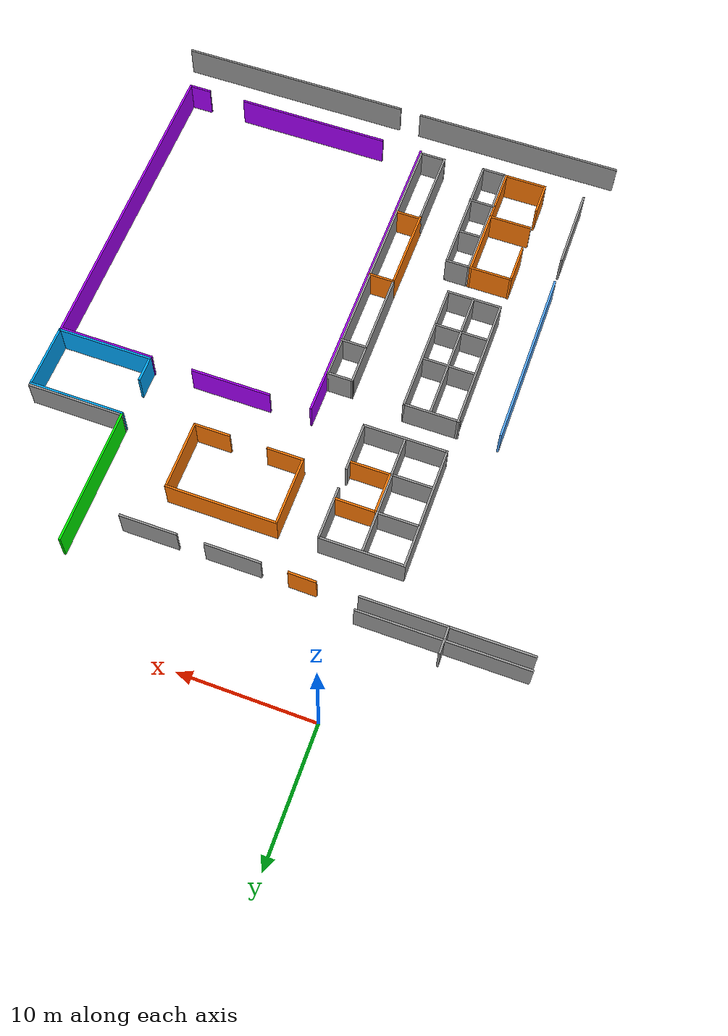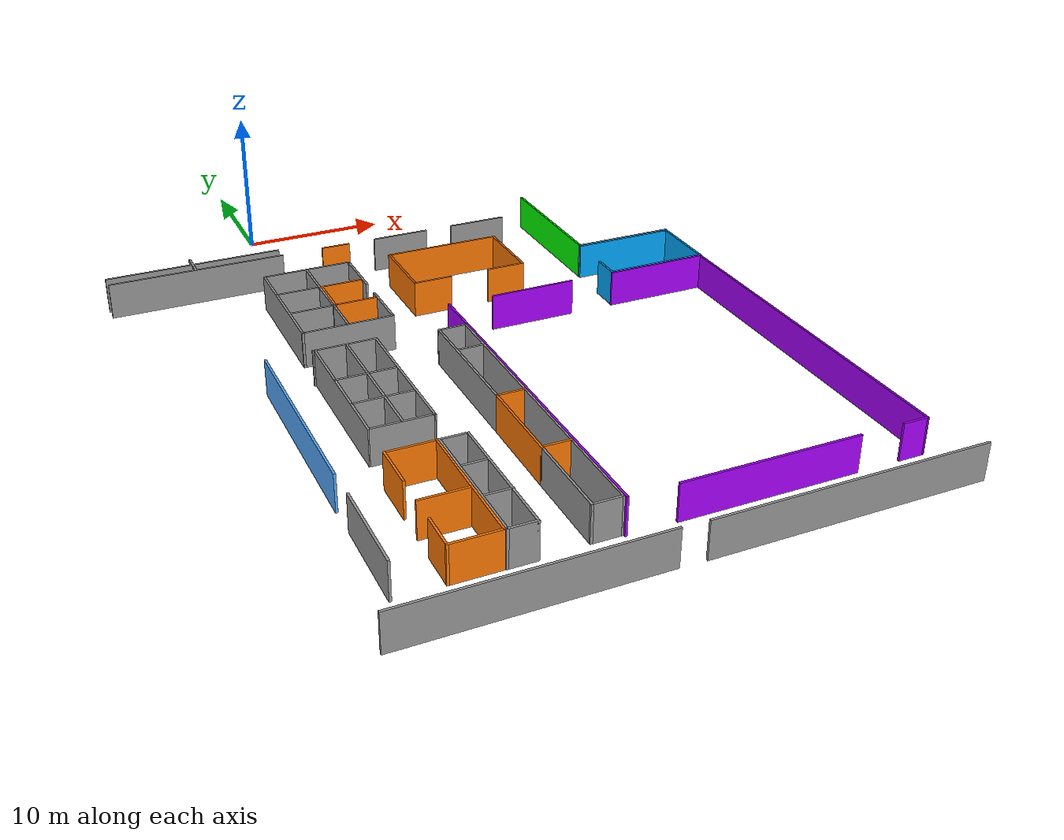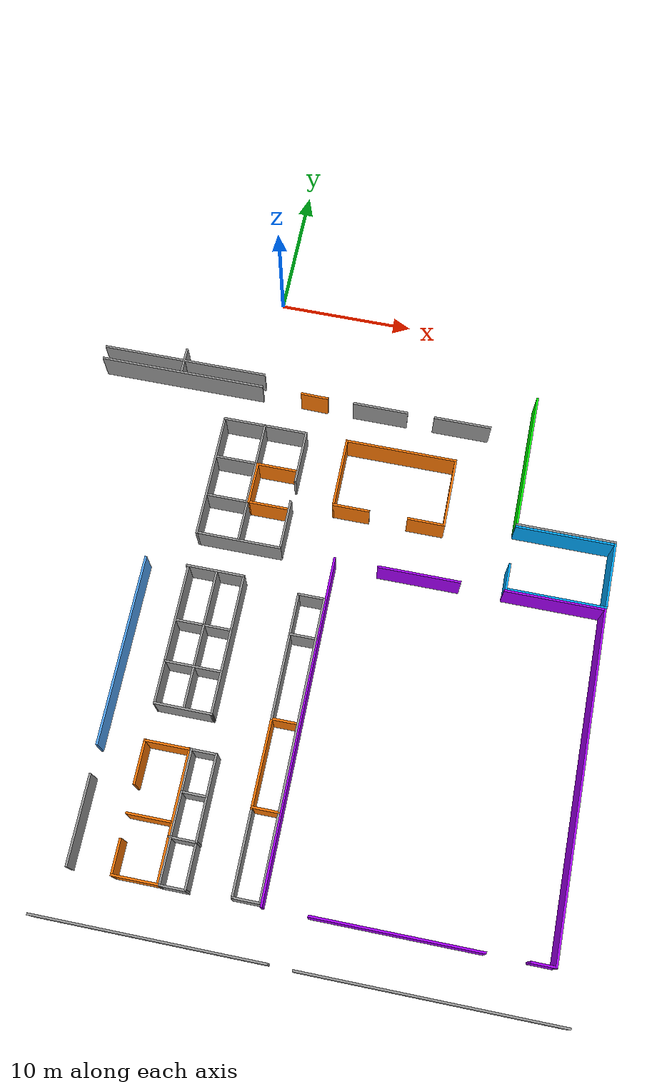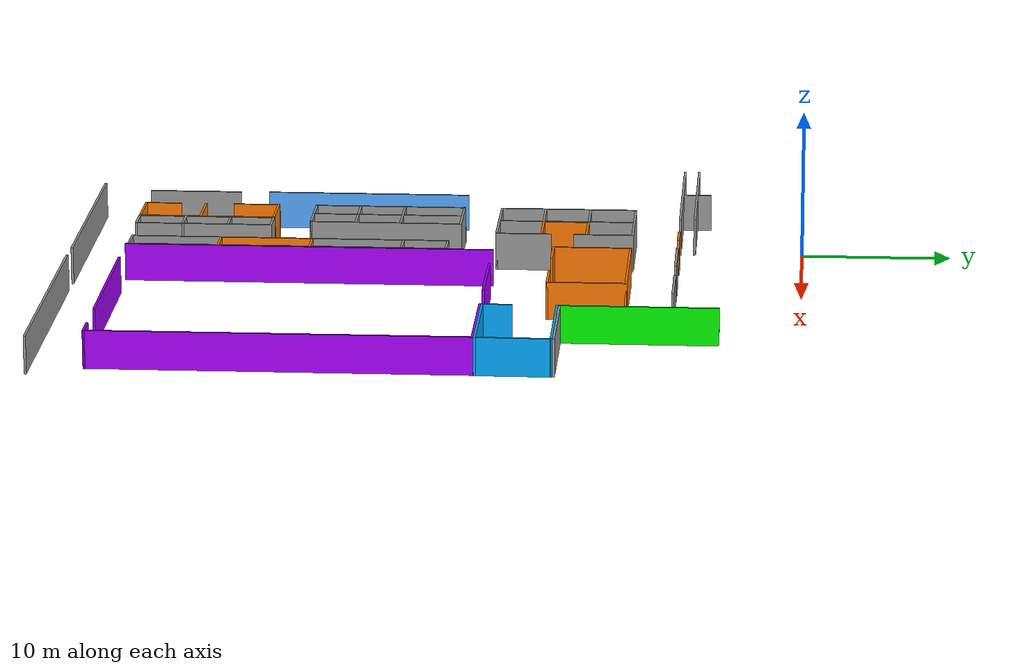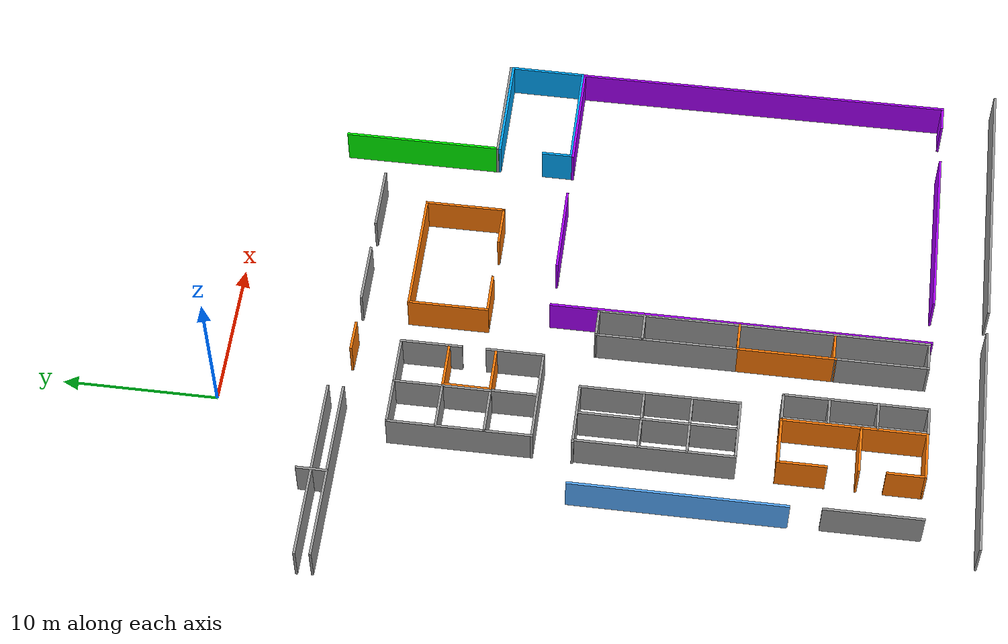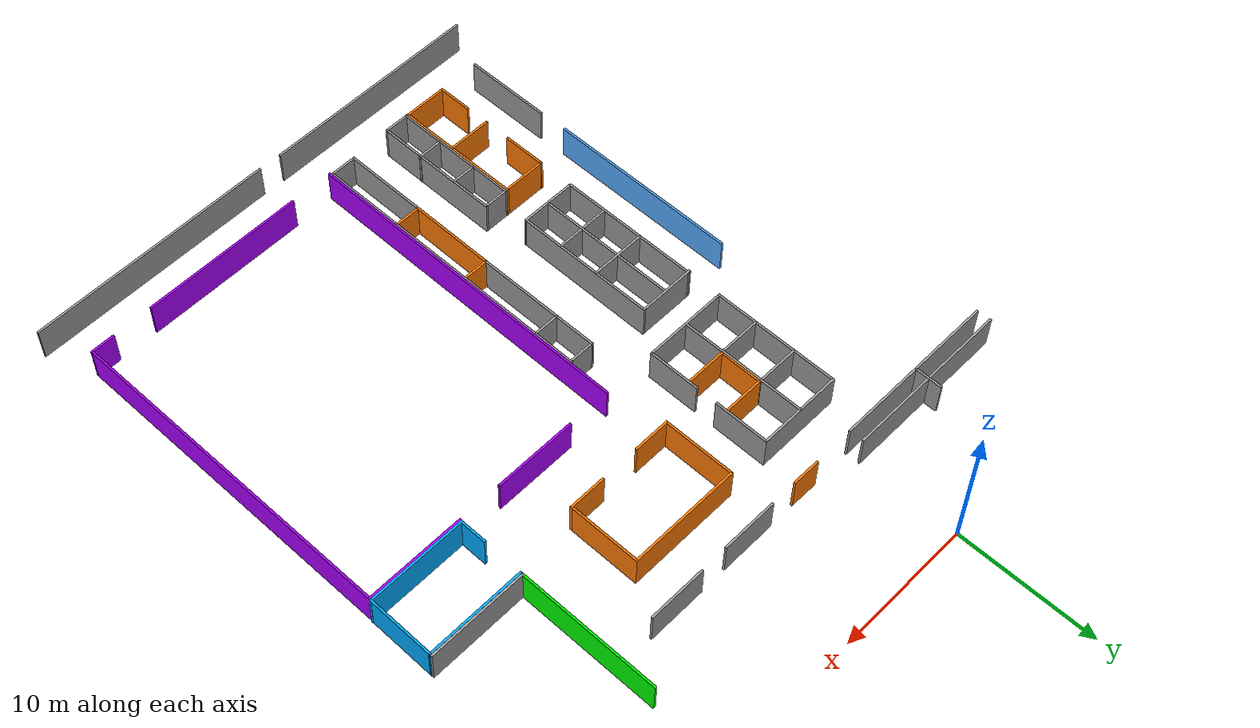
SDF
<sdf version="1.6">
 <model name="rebuilt_1">
  <pose>-2.12726 -2.76078 0 0 -0 0</pose>
  <link name="Wall_149">
   <collision name="Wall_149_Collision">
    <geometry><box><size>4.25 0.15 2.5</size></box></geometry>
    <pose>0 0 1.25 0 -0 0</pose>
   </collision>
   <visual name="Wall_149_Visual">
    <pose>0 0 1.25 0 -0 0</pose>
    <geometry><box><size>4.25 0.15 2.5</size></box></geometry>
    <material>
     <script><uri>file://media/materials/scripts/gazebo.material</uri><name>Gazebo/Grey</name></script>
     <ambient>1 1 1 1</ambient>
    </material>
    <meta><layer>0</layer></meta>
   </visual>
   <pose>17.4545 -5.4639 0 0 -0 3.14159</pose>
  </link>
  <link name="Wall_168">
   <collision name="Wall_168_Collision">
    <geometry><box><size>8.25 0.15 2.5</size></box></geometry>
    <pose>0 0 1.25 0 -0 0</pose>
   </collision>
   <visual name="Wall_168_Visual">
    <pose>0 0 1.25 0 -0 0</pose>
    <geometry><box><size>8.25 0.15 2.5</size></box></geometry>
    <material>
     <script><uri>file://media/materials/scripts/gazebo.material</uri><name>Gazebo/Grey</name></script>
     <ambient>0.996078 0.47451 0.0196078 1</ambient>
    </material>
    <meta><layer>0</layer></meta>
   </visual>
   <pose>13.4258 -8.56236 0 0 -0 0</pose>
  </link>
  <link name="Wall_169">
   <collision name="Wall_169_Collision">
    <geometry><box><size>5.25 0.15 2.5</size></box></geometry>
    <pose>0 0 1.25 0 -0 0</pose>
   </collision>
   <visual name="Wall_169_Visual">
    <pose>0 0 1.25 0 -0 0</pose>
    <geometry><box><size>5.25 0.15 2.5</size></box></geometry>
    <material>
     <script><uri>file://media/materials/scripts/gazebo.material</uri><name>Gazebo/Grey</name></script>
     <ambient>0.996078 0.47451 0.0196078 1</ambient>
    </material>
    <meta><layer>0</layer></meta>
   </visual>
   <pose>17.4758 -11.1124 0 0 0 -1.5708</pose>
  </link>
  <link name="Wall_171">
   <collision name="Wall_171_Collision">
    <geometry><box><size>5.25 0.15 2.5</size></box></geometry>
    <pose>0 0 1.25 0 -0 0</pose>
   </collision>
   <visual name="Wall_171_Visual">
    <pose>0 0 1.25 0 -0 0</pose>
    <geometry><box><size>5.25 0.15 2.5</size></box></geometry>
    <material>
     <script><uri>file://media/materials/scripts/gazebo.material</uri><name>Gazebo/Grey</name></script>
     <ambient>0.996078 0.47451 0.0196078 1</ambient>
    </material>
    <meta><layer>0</layer></meta>
   </visual>
   <pose>9.37576 -11.1124 0 0 -0 1.5708</pose>
  </link>
  <link name="Wall_173">
   <collision name="Wall_173_Collision">
    <geometry><box><size>2.75 0.15 2.5</size></box></geometry>
    <pose>0 0 1.25 0 -0 0</pose>
   </collision>
   <visual name="Wall_173_Visual">
    <pose>0 0 1.25 0 -0 0</pose>
    <geometry><box><size>2.75 0.15 2.5</size></box></geometry>
    <material>
     <script><uri>file://media/materials/scripts/gazebo.material</uri><name>Gazebo/Grey</name></script>
     <ambient>0.996078 0.47451 0.0196078 1</ambient>
    </material>
    <meta><layer>0</layer></meta>
   </visual>
   <pose>10.6758 -13.6624 0 0 -0 0</pose>
  </link>
  <link name="Wall_175">
   <collision name="Wall_175_Collision">
    <geometry><box><size>2.75 0.15 2.5</size></box></geometry>
    <pose>0 0 1.25 0 -0 0</pose>
   </collision>
   <visual name="Wall_175_Visual">
    <pose>0 0 1.25 0 -0 0</pose>
    <geometry><box><size>2.75 0.15 2.5</size></box></geometry>
    <material>
     <script><uri>file://media/materials/scripts/gazebo.material</uri><name>Gazebo/Grey</name></script>
     <ambient>0.996078 0.47451 0.0196078 1</ambient>
    </material>
    <meta><layer>0</layer></meta>
   </visual>
   <pose>16.1758 -13.6624 0 0 -0 3.14159</pose>
  </link>
  <link name="Wall_177">
   <collision name="Wall_177_Collision">
    <geometry><box><size>6 0.15 2.5</size></box></geometry>
    <pose>0 0 1.25 0 -0 0</pose>
   </collision>
   <visual name="Wall_177_Visual">
    <pose>0 0 1.25 0 -0 0</pose>
    <geometry><box><size>6 0.15 2.5</size></box></geometry>
    <material>
     <script><uri>file://media/materials/scripts/gazebo.material</uri><name>Gazebo/Grey</name></script>
     <ambient>0.666667 0 1 1</ambient>
    </material>
    <meta><layer>0</layer></meta>
   </visual>
   <pose>16.3827 -17.6674 0 0 -0 0</pose>
  </link>
  <link name="Wall_181">
   <collision name="Wall_181_Collision">
    <geometry><box><size>7.25 0.15 2.5</size></box></geometry>
    <pose>0 0 1.25 0 -0 0</pose>
   </collision>
   <visual name="Wall_181_Visual">
    <pose>0 0 1.25 0 -0 0</pose>
    <geometry><box><size>7.25 0.15 2.5</size></box></geometry>
    <material>
     <script><uri>file://media/materials/scripts/gazebo.material</uri><name>Gazebo/Grey</name></script>
     <ambient>0.666667 0 1 1</ambient>
    </material>
    <meta><layer>0</layer></meta>
   </visual>
   <pose>26.0779 -17.6626 0 0 -0 0</pose>
  </link>
  <link name="Wall_183">
   <collision name="Wall_183_Collision">
    <geometry><box><size>24.5047 0.15 2.5</size></box></geometry>
    <pose>0 0 1.25 0 -0 0</pose>
   </collision>
   <visual name="Wall_183_Visual">
    <pose>0 0 1.25 0 -0 0</pose>
    <geometry><box><size>24.5047 0.15 2.5</size></box></geometry>
    <material>
     <script><uri>file://media/materials/scripts/gazebo.material</uri><name>Gazebo/Grey</name></script>
     <ambient>0.666667 0 1 1</ambient>
    </material>
    <meta><layer>0</layer></meta>
   </visual>
   <pose>29.6489 -29.8583 0 0 0 -1.56908</pose>
  </link>
  <link name="Wall_185">
   <collision name="Wall_185_Collision">
    <geometry><box><size>24.5 0.15 2.5</size></box></geometry>
    <pose>0 0 1.25 0 -0 0</pose>
   </collision>
   <visual name="Wall_185_Visual">
    <pose>0 0 1.25 0 -0 0</pose>
    <geometry><box><size>24.5 0.15 2.5</size></box></geometry>
    <material>
     <script><uri>file://media/materials/scripts/gazebo.material</uri><name>Gazebo/Grey</name></script>
     <ambient>0.666667 0 1 1</ambient>
    </material>
    <meta><layer>0</layer></meta>
   </visual>
   <pose>10.2779 -29.838 0 0 -0 1.5708</pose>
  </link>
  <link name="Wall_195">
   <collision name="Wall_195_Collision">
    <geometry><box><size>2 0.15 2.5</size></box></geometry>
    <pose>0 0 1.25 0 -0 0</pose>
   </collision>
   <visual name="Wall_195_Visual">
    <pose>0 0 1.25 0 -0 0</pose>
    <geometry><box><size>2 0.15 2.5</size></box></geometry>
    <material>
     <script><uri>file://media/materials/scripts/gazebo.material</uri><name>Gazebo/Grey</name></script>
     <ambient>1 1 1 1</ambient>
    </material>
    <meta><layer>0</layer></meta>
   </visual>
   <pose>9.22824 -41.8686 0 0 -0 0</pose>
  </link>
  <link name="Wall_196">
   <collision name="Wall_196_Collision">
    <geometry><box><size>21.25 0.15 2.5</size></box></geometry>
    <pose>0 0 1.25 0 -0 0</pose>
   </collision>
   <visual name="Wall_196_Visual">
    <pose>0 0 1.25 0 -0 0</pose>
    <geometry><box><size>21.25 0.15 2.5</size></box></geometry>
    <material>
     <script><uri>file://media/materials/scripts/gazebo.material</uri><name>Gazebo/Grey</name></script>
     <ambient>1 1 1 1</ambient>
    </material>
    <meta><layer>0</layer></meta>
   </visual>
   <pose>10.1532 -31.3186 0 0 -0 1.5708</pose>
  </link>
  <link name="Wall_198">
   <collision name="Wall_198_Collision">
    <geometry><box><size>2 0.15 2.5</size></box></geometry>
    <pose>0 0 1.25 0 -0 0</pose>
   </collision>
   <visual name="Wall_198_Visual">
    <pose>0 0 1.25 0 -0 0</pose>
    <geometry><box><size>2 0.15 2.5</size></box></geometry>
    <material>
     <script><uri>file://media/materials/scripts/gazebo.material</uri><name>Gazebo/Grey</name></script>
     <ambient>1 1 1 1</ambient>
    </material>
    <meta><layer>0</layer></meta>
   </visual>
   <pose>9.22824 -20.7686 0 0 -0 0</pose>
  </link>
  <link name="Wall_200">
   <collision name="Wall_200_Collision">
    <geometry><box><size>2 0.15 2.5</size></box></geometry>
    <pose>0 0 1.25 0 -0 0</pose>
   </collision>
   <visual name="Wall_200_Visual">
    <pose>0 0 1.25 0 -0 0</pose>
    <geometry><box><size>2 0.15 2.5</size></box></geometry>
    <material>
     <script><uri>file://media/materials/scripts/gazebo.material</uri><name>Gazebo/Grey</name></script>
     <ambient>1 1 1 1</ambient>
    </material>
    <meta><layer>0</layer></meta>
   </visual>
   <pose>9.25811 -23.7223 0 0 -0 0</pose>
  </link>
  <link name="Wall_202">
   <collision name="Wall_202_Collision">
    <geometry><box><size>2 0.15 2.5</size></box></geometry>
    <pose>0 0 1.25 0 -0 0</pose>
   </collision>
   <visual name="Wall_202_Visual">
    <pose>0 0 1.25 0 -0 0</pose>
    <geometry><box><size>2 0.15 2.5</size></box></geometry>
    <material>
     <script><uri>file://media/materials/scripts/gazebo.material</uri><name>Gazebo/Grey</name></script>
     <ambient>0.996078 0.47451 0.0196078 1</ambient>
    </material>
    <meta><layer>0</layer></meta>
   </visual>
   <pose>9.25038 -29.8125 0 0 -0 0</pose>
  </link>
  <link name="Wall_204">
   <collision name="Wall_204_Collision">
    <geometry><box><size>2 0.15 2.5</size></box></geometry>
    <pose>0 0 1.25 0 -0 0</pose>
   </collision>
   <visual name="Wall_204_Visual">
    <pose>0 0 1.25 0 -0 0</pose>
    <geometry><box><size>2 0.15 2.5</size></box></geometry>
    <material>
     <script><uri>file://media/materials/scripts/gazebo.material</uri><name>Gazebo/Grey</name></script>
     <ambient>0.996078 0.47451 0.0196078 1</ambient>
    </material>
    <meta><layer>0</layer></meta>
   </visual>
   <pose>9.25038 -35.9099 0 0 -0 0</pose>
  </link>
  <link name="Wall_206">
   <collision name="Wall_206_Collision">
    <geometry><box><size>11.75 0.15 2.5</size></box></geometry>
    <pose>0 0 1.25 0 -0 0</pose>
   </collision>
   <visual name="Wall_206_Visual">
    <pose>0 0 1.25 0 -0 0</pose>
    <geometry><box><size>11.75 0.15 2.5</size></box></geometry>
    <material>
     <script><uri>file://media/materials/scripts/gazebo.material</uri><name>Gazebo/Grey</name></script>
     <ambient>0.666667 0 1 1</ambient>
    </material>
    <meta><layer>0</layer></meta>
   </visual>
   <pose>19.251 -42.0356 0 0 -0 0</pose>
  </link>
  <link name="Wall_208">
   <collision name="Wall_208_Collision">
    <geometry><box><size>1.75 0.15 2.5</size></box></geometry>
    <pose>0 0 1.25 0 -0 0</pose>
   </collision>
   <visual name="Wall_208_Visual">
    <pose>0 0 1.25 0 -0 0</pose>
    <geometry><box><size>1.75 0.15 2.5</size></box></geometry>
    <material>
     <script><uri>file://media/materials/scripts/gazebo.material</uri><name>Gazebo/Grey</name></script>
     <ambient>0.666667 0 1 1</ambient>
    </material>
    <meta><layer>0</layer></meta>
   </visual>
   <pose>28.8698 -42.0356 0 0 -0 0</pose>
  </link>
  <link name="Wall_215">
   <collision name="Wall_215_Collision">
    <geometry><box><size>3.25 0.15 2.5</size></box></geometry>
    <pose>0 0 1.25 0 -0 0</pose>
   </collision>
   <visual name="Wall_215_Visual">
    <pose>0 0 1.25 0 -0 0</pose>
    <geometry><box><size>3.25 0.15 2.5</size></box></geometry>
    <material>
     <script><uri>file://media/materials/scripts/gazebo.material</uri><name>Gazebo/Grey</name></script>
     <ambient>0.996078 0.47451 0.0196078 1</ambient>
    </material>
    <meta><layer>0</layer></meta>
   </visual>
   <pose>1.77665 -37.9103 0 0 -0 0</pose>
  </link>
  <link name="Wall_216">
   <collision name="Wall_216_Collision">
    <geometry><box><size>4.25 0.15 2.5</size></box></geometry>
    <pose>0 0 1.25 0 -0 0</pose>
   </collision>
   <visual name="Wall_216_Visual">
    <pose>0 0 1.25 0 -0 0</pose>
    <geometry><box><size>4.25 0.15 2.5</size></box></geometry>
    <material>
     <script><uri>file://media/materials/scripts/gazebo.material</uri><name>Gazebo/Grey</name></script>
     <ambient>0.996078 0.47451 0.0196078 1</ambient>
    </material>
    <meta><layer>0</layer></meta>
   </visual>
   <pose>3.32665 -39.9603 0 0 0 -1.5708</pose>
  </link>
  <link name="Wall_217">
   <collision name="Wall_217_Collision">
    <geometry><box><size>3.25 0.15 2.5</size></box></geometry>
    <pose>0 0 1.25 0 -0 0</pose>
   </collision>
   <visual name="Wall_217_Visual">
    <pose>0 0 1.25 0 -0 0</pose>
    <geometry><box><size>3.25 0.15 2.5</size></box></geometry>
    <material>
     <script><uri>file://media/materials/scripts/gazebo.material</uri><name>Gazebo/Grey</name></script>
     <ambient>0.996078 0.47451 0.0196078 1</ambient>
    </material>
    <meta><layer>0</layer></meta>
   </visual>
   <pose>1.77665 -42.0103 0 0 -0 3.14159</pose>
  </link>
  <link name="Wall_218">
   <collision name="Wall_218_Collision">
    <geometry><box><size>2.5 0.15 2.5</size></box></geometry>
    <pose>0 0 1.25 0 -0 0</pose>
   </collision>
   <visual name="Wall_218_Visual">
    <pose>0 0 1.25 0 -0 0</pose>
    <geometry><box><size>2.5 0.15 2.5</size></box></geometry>
    <material>
     <script><uri>file://media/materials/scripts/gazebo.material</uri><name>Gazebo/Grey</name></script>
     <ambient>0.996078 0.47451 0.0196078 1</ambient>
    </material>
    <meta><layer>0</layer></meta>
   </visual>
   <pose>0.226647 -40.8353 0 0 -0 1.5708</pose>
  </link>
  <link name="Wall_222">
   <collision name="Wall_222_Collision">
    <geometry><box><size>5.14396 0.15 2.5</size></box></geometry>
    <pose>0 0 1.25 0 -0 0</pose>
   </collision>
   <visual name="Wall_222_Visual">
    <pose>0 0 1.25 0 -0 0</pose>
    <geometry><box><size>5.14396 0.15 2.5</size></box></geometry>
    <material>
     <script><uri>file://media/materials/scripts/gazebo.material</uri><name>Gazebo/Grey</name></script>
     <ambient>0.996078 0.47451 0.0196078 1</ambient>
    </material>
    <meta><layer>0</layer></meta>
   </visual>
   <pose>3.32665 -35.4133 0 0 -0 1.5708</pose>
  </link>
  <link name="Wall_223">
   <collision name="Wall_223_Collision">
    <geometry><box><size>3.25 0.15 2.5</size></box></geometry>
    <pose>0 0 1.25 0 -0 0</pose>
   </collision>
   <visual name="Wall_223_Visual">
    <pose>0 0 1.25 0 -0 0</pose>
    <geometry><box><size>3.25 0.15 2.5</size></box></geometry>
    <material>
     <script><uri>file://media/materials/scripts/gazebo.material</uri><name>Gazebo/Grey</name></script>
     <ambient>0.996078 0.47451 0.0196078 1</ambient>
    </material>
    <meta><layer>0</layer></meta>
   </visual>
   <pose>1.79432 -32.934 0 0 -0 3.14159</pose>
  </link>
  <link name="Wall_224">
   <collision name="Wall_224_Collision">
    <geometry><box><size>3.14396 0.15 2.5</size></box></geometry>
    <pose>0 0 1.25 0 -0 0</pose>
   </collision>
   <visual name="Wall_224_Visual">
    <pose>0 0 1.25 0 -0 0</pose>
    <geometry><box><size>3.14396 0.15 2.5</size></box></geometry>
    <material>
     <script><uri>file://media/materials/scripts/gazebo.material</uri><name>Gazebo/Grey</name></script>
     <ambient>0.996078 0.47451 0.0196078 1</ambient>
    </material>
    <meta><layer>0</layer></meta>
   </visual>
   <pose>0.226647 -34.4133 0 0 0 -1.5708</pose>
  </link>
  <link name="Wall_227">
   <collision name="Wall_227_Collision">
    <geometry><box><size>9.25 0.15 2.5</size></box></geometry>
    <pose>0 0 1.25 0 -0 0</pose>
   </collision>
   <visual name="Wall_227_Visual">
    <pose>0 0 1.25 0 -0 0</pose>
    <geometry><box><size>9.25 0.15 2.5</size></box></geometry>
    <material>
     <script><uri>file://media/materials/scripts/gazebo.material</uri><name>Gazebo/Grey</name></script>
     <ambient>1 1 1 1</ambient>
    </material>
    <meta><layer>0</layer></meta>
   </visual>
   <pose>5.19432 -37.484 0 0 0 -1.5708</pose>
  </link>
  <link name="Wall_228">
   <collision name="Wall_228_Collision">
    <geometry><box><size>1.90649 0.15 2.5</size></box></geometry>
    <pose>0 0 1.25 0 -0 0</pose>
   </collision>
   <visual name="Wall_228_Visual">
    <pose>0 0 1.25 0 -0 0</pose>
    <geometry><box><size>1.90649 0.15 2.5</size></box></geometry>
    <material>
     <script><uri>file://media/materials/scripts/gazebo.material</uri><name>Gazebo/Grey</name></script>
     <ambient>1 1 1 1</ambient>
    </material>
    <meta><layer>0</layer></meta>
   </visual>
   <pose>4.31607 -42.034 0 0 -0 3.14159</pose>
  </link>
  <link name="Wall_229">
   <collision name="Wall_229_Collision">
    <geometry><box><size>9.25 0.15 2.5</size></box></geometry>
    <pose>0 0 1.25 0 -0 0</pose>
   </collision>
   <visual name="Wall_229_Visual">
    <pose>0 0 1.25 0 -0 0</pose>
    <geometry><box><size>9.25 0.15 2.5</size></box></geometry>
    <material>
     <script><uri>file://media/materials/scripts/gazebo.material</uri><name>Gazebo/Grey</name></script>
     <ambient>1 1 1 1</ambient>
    </material>
    <meta><layer>0</layer></meta>
   </visual>
   <pose>3.45815 -37.484 0 0 -0 1.5708</pose>
  </link>
  <link name="Wall_231">
   <collision name="Wall_231_Collision">
    <geometry><box><size>1.90649 0.15 2.5</size></box></geometry>
    <pose>0 0 1.25 0 -0 0</pose>
   </collision>
   <visual name="Wall_231_Visual">
    <pose>0 0 1.25 0 -0 0</pose>
    <geometry><box><size>1.90649 0.15 2.5</size></box></geometry>
    <material>
     <script><uri>file://media/materials/scripts/gazebo.material</uri><name>Gazebo/Grey</name></script>
     <ambient>1 1 1 1</ambient>
    </material>
    <meta><layer>0</layer></meta>
   </visual>
   <pose>4.31607 -32.934 0 0 -0 0</pose>
  </link>
  <link name="Wall_233">
   <collision name="Wall_233_Collision">
    <geometry><box><size>1.75 0.15 2.5</size></box></geometry>
    <pose>0 0 1.25 0 -0 0</pose>
   </collision>
   <visual name="Wall_233_Visual">
    <pose>0 0 1.25 0 -0 0</pose>
    <geometry><box><size>1.75 0.15 2.5</size></box></geometry>
    <material>
     <script><uri>file://media/materials/scripts/gazebo.material</uri><name>Gazebo/Grey</name></script>
     <ambient>1 1 1 1</ambient>
    </material>
    <meta><layer>0</layer></meta>
   </visual>
   <pose>4.2968 -35.8366 0 0 -0 0</pose>
  </link>
  <link name="Wall_235">
   <collision name="Wall_235_Collision">
    <geometry><box><size>2 0.15 2.5</size></box></geometry>
    <pose>0 0 1.25 0 -0 0</pose>
   </collision>
   <visual name="Wall_235_Visual">
    <pose>0 0 1.25 0 -0 0</pose>
    <geometry><box><size>2 0.15 2.5</size></box></geometry>
    <material>
     <script><uri>file://media/materials/scripts/gazebo.material</uri><name>Gazebo/Grey</name></script>
     <ambient>1 1 1 1</ambient>
    </material>
    <meta><layer>0</layer></meta>
   </visual>
   <pose>4.29985 -38.8853 0 0 -0 0</pose>
  </link>
  <link name="Wall_238">
   <collision name="Wall_238_Collision">
    <geometry><box><size>6.25 0.15 2.5</size></box></geometry>
    <pose>0 0 1.25 0 -0 0</pose>
   </collision>
   <visual name="Wall_238_Visual">
    <pose>0 0 1.25 0 -0 0</pose>
    <geometry><box><size>6.25 0.15 2.5</size></box></geometry>
    <material>
     <script><uri>file://media/materials/scripts/gazebo.material</uri><name>Gazebo/Grey</name></script>
     <ambient>1 1 1 1</ambient>
    </material>
    <meta><layer>0</layer></meta>
   </visual>
   <pose>-2.82552 -38.9679 0 0 0 -1.5708</pose>
  </link>
  <link name="Wall_264">
   <collision name="Wall_264_Collision">
    <geometry><box><size>13.75 0.15 2.5</size></box></geometry>
    <pose>0 0 1.25 0 -0 0</pose>
   </collision>
   <visual name="Wall_264_Visual">
    <pose>0 0 1.25 0 -0 0</pose>
    <geometry><box><size>13.75 0.15 2.5</size></box></geometry>
    <material>
     <script><uri>file://media/materials/scripts/gazebo.material</uri><name>Gazebo/Grey</name></script>
     <ambient>0.333333 0.666667 1 1</ambient>
    </material>
    <meta><layer>0</layer></meta>
   </visual>
   <pose>-2.90196 -27.0155 0 0 0 -1.5708</pose>
  </link>
  <link name="Wall_271">
   <collision name="Wall_271_Collision">
    <geometry><box><size>4.25 0.15 2.5</size></box></geometry>
    <pose>0 0 1.25 0 -0 0</pose>
   </collision>
   <visual name="Wall_271_Visual">
    <pose>0 0 1.25 0 -0 0</pose>
    <geometry><box><size>4.25 0.15 2.5</size></box></geometry>
    <material>
     <script><uri>file://media/materials/scripts/gazebo.material</uri><name>Gazebo/Grey</name></script>
     <ambient>1 1 1 1</ambient>
    </material>
    <meta><layer>0</layer></meta>
   </visual>
   <pose>2.18463 -20.2145 0 0 -0 0</pose>
  </link>
  <link name="Wall_272">
   <collision name="Wall_272_Collision">
    <geometry><box><size>10.25 0.15 2.5</size></box></geometry>
    <pose>0 0 1.25 0 -0 0</pose>
   </collision>
   <visual name="Wall_272_Visual">
    <pose>0 0 1.25 0 -0 0</pose>
    <geometry><box><size>10.25 0.15 2.5</size></box></geometry>
    <material>
     <script><uri>file://media/materials/scripts/gazebo.material</uri><name>Gazebo/Grey</name></script>
     <ambient>1 1 1 1</ambient>
    </material>
    <meta><layer>0</layer></meta>
   </visual>
   <pose>4.23463 -25.2645 0 0 0 -1.5708</pose>
  </link>
  <link name="Wall_273">
   <collision name="Wall_273_Collision">
    <geometry><box><size>4.13697 0.15 2.5</size></box></geometry>
    <pose>0 0 1.25 0 -0 0</pose>
   </collision>
   <visual name="Wall_273_Visual">
    <pose>0 0 1.25 0 -0 0</pose>
    <geometry><box><size>4.13697 0.15 2.5</size></box></geometry>
    <material>
     <script><uri>file://media/materials/scripts/gazebo.material</uri><name>Gazebo/Grey</name></script>
     <ambient>1 1 1 1</ambient>
    </material>
    <meta><layer>0</layer></meta>
   </visual>
   <pose>2.24115 -30.3107 0 0 -0 3.1397</pose>
  </link>
  <link name="Wall_274">
   <collision name="Wall_274_Collision">
    <geometry><box><size>10.25 0.15 2.5</size></box></geometry>
    <pose>0 0 1.25 0 -0 0</pose>
   </collision>
   <visual name="Wall_274_Visual">
    <pose>0 0 1.25 0 -0 0</pose>
    <geometry><box><size>10.25 0.15 2.5</size></box></geometry>
    <material>
     <script><uri>file://media/materials/scripts/gazebo.material</uri><name>Gazebo/Grey</name></script>
     <ambient>1 1 1 1</ambient>
    </material>
    <meta><layer>0</layer></meta>
   </visual>
   <pose>0.2326 -25.2569 0 0 -0 1.5708</pose>
  </link>
  <link name="Wall_276">
   <collision name="Wall_276_Collision">
    <geometry><box><size>10 0.15 2.5</size></box></geometry>
    <pose>0 0 1.25 0 -0 0</pose>
   </collision>
   <visual name="Wall_276_Visual">
    <pose>0 0 1.25 0 -0 0</pose>
    <geometry><box><size>10 0.15 2.5</size></box></geometry>
    <material>
     <script><uri>file://media/materials/scripts/gazebo.material</uri><name>Gazebo/Grey</name></script>
     <ambient>1 1 1 1</ambient>
    </material>
    <meta><layer>0</layer></meta>
   </visual>
   <pose>2.28825 -25.2835 0 0 -0 1.5708</pose>
  </link>
  <link name="Wall_278">
   <collision name="Wall_278_Collision">
    <geometry><box><size>4 0.15 2.5</size></box></geometry>
    <pose>0 0 1.25 0 -0 0</pose>
   </collision>
   <visual name="Wall_278_Visual">
    <pose>0 0 1.25 0 -0 0</pose>
    <geometry><box><size>4 0.15 2.5</size></box></geometry>
    <material>
     <script><uri>file://media/materials/scripts/gazebo.material</uri><name>Gazebo/Grey</name></script>
     <ambient>1 1 1 1</ambient>
    </material>
    <meta><layer>0</layer></meta>
   </visual>
   <pose>2.22289 -27.2954 0 0 -0 0</pose>
  </link>
  <link name="Wall_280">
   <collision name="Wall_280_Collision">
    <geometry><box><size>4 0.15 2.5</size></box></geometry>
    <pose>0 0 1.25 0 -0 0</pose>
   </collision>
   <visual name="Wall_280_Visual">
    <pose>0 0 1.25 0 -0 0</pose>
    <geometry><box><size>4 0.15 2.5</size></box></geometry>
    <material>
     <script><uri>file://media/materials/scripts/gazebo.material</uri><name>Gazebo/Grey</name></script>
     <ambient>1 1 1 1</ambient>
    </material>
    <meta><layer>0</layer></meta>
   </visual>
   <pose>2.23043 -24.2659 0 0 -0 0</pose>
  </link>
  <link name="Wall_284">
   <collision name="Wall_284_Collision">
    <geometry><box><size>6.25 0.15 2.5</size></box></geometry>
    <pose>0 0 1.25 0 -0 0</pose>
   </collision>
   <visual name="Wall_284_Visual">
    <pose>0 0 1.25 0 -0 0</pose>
    <geometry><box><size>6.25 0.15 2.5</size></box></geometry>
    <material>
     <script><uri>file://media/materials/scripts/gazebo.material</uri><name>Gazebo/Grey</name></script>
     <ambient>1 1 1 1</ambient>
    </material>
    <meta><layer>0</layer></meta>
   </visual>
   <pose>3.26731 -8.54908 0 0 -0 0</pose>
  </link>
  <link name="Wall_286">
   <collision name="Wall_286_Collision">
    <geometry><box><size>6.25 0.15 2.5</size></box></geometry>
    <pose>0 0 1.25 0 -0 0</pose>
   </collision>
   <visual name="Wall_286_Visual">
    <pose>0 0 1.25 0 -0 0</pose>
    <geometry><box><size>6.25 0.15 2.5</size></box></geometry>
    <material>
     <script><uri>file://media/materials/scripts/gazebo.material</uri><name>Gazebo/Grey</name></script>
     <ambient>1 1 1 1</ambient>
    </material>
    <meta><layer>0</layer></meta>
   </visual>
   <pose>3.26731 -17.6491 0 0 -0 3.14159</pose>
  </link>
  <link name="Wall_287">
   <collision name="Wall_287_Collision">
    <geometry><box><size>9.25 0.15 2.5</size></box></geometry>
    <pose>0 0 1.25 0 -0 0</pose>
   </collision>
   <visual name="Wall_287_Visual">
    <pose>0 0 1.25 0 -0 0</pose>
    <geometry><box><size>9.25 0.15 2.5</size></box></geometry>
    <material>
     <script><uri>file://media/materials/scripts/gazebo.material</uri><name>Gazebo/Grey</name></script>
     <ambient>1 1 1 1</ambient>
    </material>
    <meta><layer>0</layer></meta>
   </visual>
   <pose>0.217314 -13.0991 0 0 -0 1.5708</pose>
  </link>
  <link name="Wall_289">
   <collision name="Wall_289_Collision">
    <geometry><box><size>3.13 0.15 2.5</size></box></geometry>
    <pose>0 0 1.25 0 -0 0</pose>
   </collision>
   <visual name="Wall_289_Visual">
    <pose>0 0 1.25 0 -0 0</pose>
    <geometry><box><size>3.13 0.15 2.5</size></box></geometry>
    <material>
     <script><uri>file://media/materials/scripts/gazebo.material</uri><name>Gazebo/Grey</name></script>
     <ambient>1 1 1 1</ambient>
    </material>
    <meta><layer>0</layer></meta>
   </visual>
   <pose>1.76711 -14.6684 0 0 -0 0</pose>
  </link>
  <link name="Wall_290">
   <collision name="Wall_290_Collision">
    <geometry><box><size>3 0.15 2.5</size></box></geometry>
    <pose>0 0 1.25 0 -0 0</pose>
   </collision>
   <visual name="Wall_290_Visual">
    <pose>0 0 1.25 0 -0 0</pose>
    <geometry><box><size>3 0.15 2.5</size></box></geometry>
    <material>
     <script><uri>file://media/materials/scripts/gazebo.material</uri><name>Gazebo/Grey</name></script>
     <ambient>1 1 1 1</ambient>
    </material>
    <meta><layer>0</layer></meta>
   </visual>
   <pose>3.25711 -16.0934 0 0 0 -1.5708</pose>
  </link>
  <link name="Wall_295">
   <collision name="Wall_295_Collision">
    <geometry><box><size>6.25 0.15 2.5</size></box></geometry>
    <pose>0 0 1.25 0 -0 0</pose>
   </collision>
   <visual name="Wall_295_Visual">
    <pose>0 0 1.25 0 -0 0</pose>
    <geometry><box><size>6.25 0.15 2.5</size></box></geometry>
    <material>
     <script><uri>file://media/materials/scripts/gazebo.material</uri><name>Gazebo/Grey</name></script>
     <ambient>1 1 1 1</ambient>
    </material>
    <meta><layer>0</layer></meta>
   </visual>
   <pose>3.22244 -11.6184 0 0 -0 1.5708</pose>
  </link>
  <link name="Wall_297">
   <collision name="Wall_297_Collision">
    <geometry><box><size>3 0.15 2.5</size></box></geometry>
    <pose>0 0 1.25 0 -0 0</pose>
   </collision>
   <visual name="Wall_297_Visual">
    <pose>0 0 1.25 0 -0 0</pose>
    <geometry><box><size>3 0.15 2.5</size></box></geometry>
    <material>
     <script><uri>file://media/materials/scripts/gazebo.material</uri><name>Gazebo/Grey</name></script>
     <ambient>1 1 1 1</ambient>
    </material>
    <meta><layer>0</layer></meta>
   </visual>
   <pose>1.70211 -11.6187 0 0 -0 0</pose>
  </link>
  <link name="Wall_300">
   <collision name="Wall_300_Collision">
    <geometry><box><size>3 0.15 2.5</size></box></geometry>
    <pose>0 0 1.25 0 -0 0</pose>
   </collision>
   <visual name="Wall_300_Visual">
    <pose>0 0 1.25 0 -0 0</pose>
    <geometry><box><size>3 0.15 2.5</size></box></geometry>
    <material>
     <script><uri>file://media/materials/scripts/gazebo.material</uri><name>Gazebo/Grey</name></script>
     <ambient>0.996078 0.47451 0.0196078 1</ambient>
    </material>
    <meta><layer>0</layer></meta>
   </visual>
   <pose>4.77312 -11.6333 0 0 -0 0</pose>
  </link>
  <link name="Wall_302">
   <collision name="Wall_302_Collision">
    <geometry><box><size>3.15472 0.15 2.5</size></box></geometry>
    <pose>0 0 1.25 0 -0 0</pose>
   </collision>
   <visual name="Wall_302_Visual">
    <pose>0 0 1.25 0 -0 0</pose>
    <geometry><box><size>3.15472 0.15 2.5</size></box></geometry>
    <material>
     <script><uri>file://media/materials/scripts/gazebo.material</uri><name>Gazebo/Grey</name></script>
     <ambient>0.996078 0.47451 0.0196078 1</ambient>
    </material>
    <meta><layer>0</layer></meta>
   </visual>
   <pose>3.35678 -13.1357 0 0 0 -1.57656</pose>
  </link>
  <link name="Wall_303">
   <collision name="Wall_303_Collision">
    <geometry><box><size>3 0.15 2.5</size></box></geometry>
    <pose>0 0 1.25 0 -0 0</pose>
   </collision>
   <visual name="Wall_303_Visual">
    <pose>0 0 1.25 0 -0 0</pose>
    <geometry><box><size>3 0.15 2.5</size></box></geometry>
    <material>
     <script><uri>file://media/materials/scripts/gazebo.material</uri><name>Gazebo/Grey</name></script>
     <ambient>0.996078 0.47451 0.0196078 1</ambient>
    </material>
    <meta><layer>0</layer></meta>
   </visual>
   <pose>4.75578 -14.638 0 0 -0 0</pose>
  </link>
  <link name="Wall_306">
   <collision name="Wall_306_Collision">
    <geometry><box><size>3.75 0.15 2.5</size></box></geometry>
    <pose>0 0 1.25 0 -0 0</pose>
   </collision>
   <visual name="Wall_306_Visual">
    <pose>0 0 1.25 0 -0 0</pose>
    <geometry><box><size>3.75 0.15 2.5</size></box></geometry>
    <material>
     <script><uri>file://media/materials/scripts/gazebo.material</uri><name>Gazebo/Grey</name></script>
     <ambient>1 1 1 1</ambient>
    </material>
    <meta><layer>0</layer></meta>
   </visual>
   <pose>6.31731 -15.8491 0 0 -0 1.5708</pose>
  </link>
  <link name="Wall_308">
   <collision name="Wall_308_Collision">
    <geometry><box><size>4 0.15 2.5</size></box></geometry>
    <pose>0 0 1.25 0 -0 0</pose>
   </collision>
   <visual name="Wall_308_Visual">
    <pose>0 0 1.25 0 -0 0</pose>
    <geometry><box><size>4 0.15 2.5</size></box></geometry>
    <material>
     <script><uri>file://media/materials/scripts/gazebo.material</uri><name>Gazebo/Grey</name></script>
     <ambient>1 1 1 1</ambient>
    </material>
    <meta><layer>0</layer></meta>
   </visual>
   <pose>6.31731 -10.4741 0 0 0 -1.5708</pose>
  </link>
  <link name="Wall_387">
   <collision name="Wall_387_Collision">
    <geometry><box><size>2.05188 0.15 2.5</size></box></geometry>
    <pose>0 0 1.25 0 -0 0</pose>
   </collision>
   <visual name="Wall_387_Visual">
    <pose>0 0 1.25 0 -0 0</pose>
    <geometry><box><size>2.05188 0.15 2.5</size></box></geometry>
    <material>
     <script><uri>file://media/materials/scripts/gazebo.material</uri><name>Gazebo/Grey</name></script>
     <ambient>0.996078 0.47451 0.0196078 1</ambient>
    </material>
    <meta><layer>0</layer></meta>
   </visual>
   <pose>6.33291 -5.47168 0 0 -0 3.128</pose>
  </link>
  <link name="Wall_393">
   <collision name="Wall_393_Collision">
    <geometry><box><size>12.25 0.15 2.5</size></box></geometry>
    <pose>0 0 1.25 0 -0 0</pose>
   </collision>
   <visual name="Wall_393_Visual">
    <pose>0 0 1.25 0 -0 0</pose>
    <geometry><box><size>12.25 0.15 2.5</size></box></geometry>
    <material>
     <script><uri>file://media/materials/scripts/gazebo.material</uri><name>Gazebo/Grey</name></script>
     <ambient>1 1 1 1</ambient>
    </material>
    <meta><layer>0</layer></meta>
   </visual>
   <pose>-3.73468 -5.47714 0 0 -0 3.14159</pose>
  </link>
  <link name="Wall_530">
   <collision name="Wall_530_Collision">
    <geometry><box><size>4.1128 0.15 2.5</size></box></geometry>
    <pose>0 0 1.25 0 -0 0</pose>
   </collision>
   <visual name="Wall_530_Visual">
    <pose>0 0 1.25 0 -0 0</pose>
    <geometry><box><size>4.1128 0.15 2.5</size></box></geometry>
    <material>
     <script><uri>file://media/materials/scripts/gazebo.material</uri><name>Gazebo/Grey</name></script>
     <ambient>1 1 1 1</ambient>
    </material>
    <meta><layer>0</layer></meta>
   </visual>
   <pose>11.3185 -5.4843 0 0 -0 3.14159</pose>
  </link>
  <link name="Wall_572">
   <collision name="Wall_572_Collision">
    <geometry><box><size>18 0.15 2.5</size></box></geometry>
    <pose>0 0 1.25 0 -0 0</pose>
   </collision>
   <visual name="Wall_572_Visual">
    <pose>0 0 1.25 0 -0 0</pose>
    <geometry><box><size>18 0.15 2.5</size></box></geometry>
    <material>
     <script><uri>file://media/materials/scripts/gazebo.material</uri><name>Gazebo/Grey</name></script>
     <ambient>1 1 1 1</ambient>
    </material>
    <meta><layer>0</layer></meta>
   </visual>
   <pose>22.084 -45.5324 0 0 -0 3.14159</pose>
  </link>
  <link name="Wall_574">
   <collision name="Wall_574_Collision">
    <geometry><box><size>16 0.15 2.5</size></box></geometry>
    <pose>0 0 1.25 0 -0 0</pose>
   </collision>
   <visual name="Wall_574_Visual">
    <pose>0 0 1.25 0 -0 0</pose>
    <geometry><box><size>16 0.15 2.5</size></box></geometry>
    <material>
     <script><uri>file://media/materials/scripts/gazebo.material</uri><name>Gazebo/Grey</name></script>
     <ambient>1 1 1 1</ambient>
    </material>
    <meta><layer>0</layer></meta>
   </visual>
   <pose>3.4643 -45.4684 0 0 -0 0</pose>
  </link>
  <link name="Wall_590">
   <collision name="Wall_590_Collision">
    <geometry><box><size>7.25 0.15 2.5</size></box></geometry>
    <pose>0 0 1.25 0 -0 0</pose>
   </collision>
   <visual name="Wall_590_Visual">
    <pose>0 0 1.25 0 -0 0</pose>
    <geometry><box><size>7.25 0.15 2.5</size></box></geometry>
    <material>
     <script><uri>file://media/materials/scripts/gazebo.material</uri><name>Gazebo/Grey</name></script>
     <ambient>1 1 1 1</ambient>
    </material>
    <meta><layer>0</layer></meta>
   </visual>
   <pose>26.1422 -12.583 0 0 -0 3.14159</pose>
  </link>
  <link name="Wall_591">
   <collision name="Wall_591_Collision">
    <geometry><box><size>10.25 0.15 2.5</size></box></geometry>
    <pose>0 0 1.25 0 -0 0</pose>
   </collision>
   <visual name="Wall_591_Visual">
    <pose>0 0 1.25 0 -0 0</pose>
    <geometry><box><size>10.25 0.15 2.5</size></box></geometry>
    <material>
     <script><uri>file://media/materials/scripts/gazebo.material</uri><name>Gazebo/Grey</name></script>
     <ambient>0 1 0 1</ambient>
    </material>
    <meta><layer>0</layer></meta>
   </visual>
   <pose>22.5922 -7.53301 0 0 -0 1.5708</pose>
  </link>
  <link name="Wall_598">
   <collision name="Wall_598_Collision">
    <geometry><box><size>7.25 0.15 2.5</size></box></geometry>
    <pose>0 0 1.25 0 -0 0</pose>
   </collision>
   <visual name="Wall_598_Visual">
    <pose>0 0 1.25 0 -0 0</pose>
    <geometry><box><size>7.25 0.15 2.5</size></box></geometry>
    <material>
     <script><uri>file://media/materials/scripts/gazebo.material</uri><name>Gazebo/Grey</name></script>
     <ambient>0 0.666667 1 1</ambient>
    </material>
    <meta><layer>0</layer></meta>
   </visual>
   <pose>26.1506 -12.7384 0 0 -0 0</pose>
  </link>
  <link name="Wall_599">
   <collision name="Wall_599_Collision">
    <geometry><box><size>4.92332 0.15 2.5</size></box></geometry>
    <pose>0 0 1.25 0 -0 0</pose>
   </collision>
   <visual name="Wall_599_Visual">
    <pose>0 0 1.25 0 -0 0</pose>
    <geometry><box><size>4.92332 0.15 2.5</size></box></geometry>
    <material>
     <script><uri>file://media/materials/scripts/gazebo.material</uri><name>Gazebo/Grey</name></script>
     <ambient>0 0.666667 1 1</ambient>
    </material>
    <meta><layer>0</layer></meta>
   </visual>
   <pose>29.6824 -15.1371 0 0 0 -1.5784</pose>
  </link>
  <link name="Wall_600">
   <collision name="Wall_600_Collision">
    <geometry><box><size>7.25 0.15 2.5</size></box></geometry>
    <pose>0 0 1.25 0 -0 0</pose>
   </collision>
   <visual name="Wall_600_Visual">
    <pose>0 0 1.25 0 -0 0</pose>
    <geometry><box><size>7.25 0.15 2.5</size></box></geometry>
    <material>
     <script><uri>file://media/materials/scripts/gazebo.material</uri><name>Gazebo/Grey</name></script>
     <ambient>0 0.666667 1 1</ambient>
    </material>
    <meta><layer>0</layer></meta>
   </visual>
   <pose>26.1264 -17.5238 0 0 -0 3.14159</pose>
  </link>
  <link name="Wall_601">
   <collision name="Wall_601_Collision">
    <geometry><box><size>2 0.15 2.5</size></box></geometry>
    <pose>0 0 1.25 0 -0 0</pose>
   </collision>
   <visual name="Wall_601_Visual">
    <pose>0 0 1.25 0 -0 0</pose>
    <geometry><box><size>2 0.15 2.5</size></box></geometry>
    <material>
     <script><uri>file://media/materials/scripts/gazebo.material</uri><name>Gazebo/Grey</name></script>
     <ambient>0 0.666667 1 1</ambient>
    </material>
    <meta><layer>0</layer></meta>
   </visual>
   <pose>22.5643 -16.5988 0 0 -0 1.5708</pose>
  </link>
  <link name="Wall_642">
   <collision name="Wall_642_Collision">
    <geometry><box><size>12.25 0.15 2.5</size></box></geometry>
    <pose>0 0 1.25 0 -0 0</pose>
   </collision>
   <visual name="Wall_642_Visual">
    <pose>0 0 1.25 0 -0 0</pose>
    <geometry><box><size>12.25 0.15 2.5</size></box></geometry>
    <material>
     <script><uri>file://media/materials/scripts/gazebo.material</uri><name>Gazebo/Grey</name></script>
     <ambient>1 1 1 1</ambient>
    </material>
    <meta><layer>0</layer></meta>
   </visual>
   <pose>-3.77468 -4.49779 0 0 -0 0</pose>
  </link>
  <link name="Wall_648">
   <collision name="Wall_648_Collision">
    <geometry><box><size>2 0.15 2.5</size></box></geometry>
    <pose>0 0 1.25 0 -0 0</pose>
   </collision>
   <visual name="Wall_648_Visual">
    <pose>0 0 1.25 0 -0 0</pose>
    <geometry><box><size>2 0.15 2.5</size></box></geometry>
    <material>
     <script><uri>file://media/materials/scripts/gazebo.material</uri><name>Gazebo/Grey</name></script>
     <ambient>1 1 1 1</ambient>
    </material>
    <meta><layer>0</layer></meta>
   </visual>
   <pose>-3.84854 -4.51945 0 0 0 -1.5708</pose>
  </link>
  <link name="Wall_693">
   <collision name="Wall_693_Collision">
    <geometry><box><size>6 0.15 2.5</size></box></geometry>
    <pose>0 0 1.25 0 -0 0</pose>
   </collision>
   <visual name="Wall_693_Visual">
    <pose>0 0 1.25 0 -0 0</pose>
    <geometry><box><size>6 0.15 2.5</size></box></geometry>
    <material>
     <script><uri>file://media/materials/scripts/gazebo.material</uri><name>Gazebo/Grey</name></script>
     <ambient>1 1 1 1</ambient>
    </material>
    <meta><layer>0</layer></meta>
   </visual>
   <pose>8.30324 -38.9436 0 0 -0 1.5708</pose>
  </link>
  <link name="Wall_695">
   <collision name="Wall_695_Collision">
    <geometry><box><size>6.35605 0.15 2.5</size></box></geometry>
    <pose>0 0 1.25 0 -0 0</pose>
   </collision>
   <visual name="Wall_695_Visual">
    <pose>0 0 1.25 0 -0 0</pose>
    <geometry><box><size>6.35605 0.15 2.5</size></box></geometry>
    <material>
     <script><uri>file://media/materials/scripts/gazebo.material</uri><name>Gazebo/Grey</name></script>
     <ambient>0.996078 0.47451 0.0196078 1</ambient>
    </material>
    <meta><layer>0</layer></meta>
   </visual>
   <pose>8.31431 -32.9156 0 0 -0 1.56723</pose>
  </link>
  <link name="Wall_699">
   <collision name="Wall_699_Collision">
    <geometry><box><size>9.19402 0.15 2.5</size></box></geometry>
    <pose>0 0 1.25 0 -0 0</pose>
   </collision>
   <visual name="Wall_699_Visual">
    <pose>0 0 1.25 0 -0 0</pose>
    <geometry><box><size>9.19402 0.15 2.5</size></box></geometry>
    <material>
     <script><uri>file://media/materials/scripts/gazebo.material</uri><name>Gazebo/Grey</name></script>
     <ambient>1 1 1 1</ambient>
    </material>
    <meta><layer>0</layer></meta>
   </visual>
   <pose>8.31431 -25.2905 0 0 0 -1.56835</pose>
  </link>
  <static>1</static>
 </model>
</sdf>
